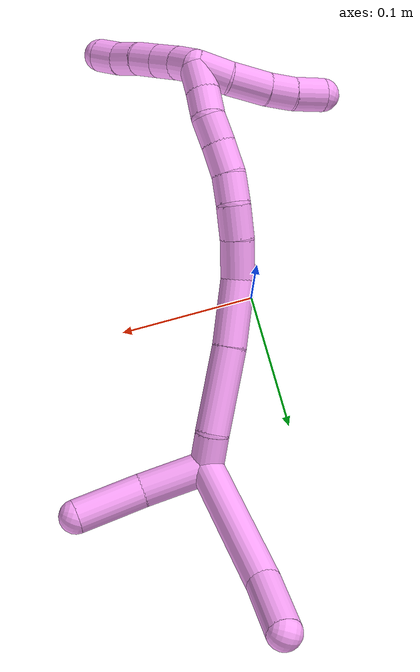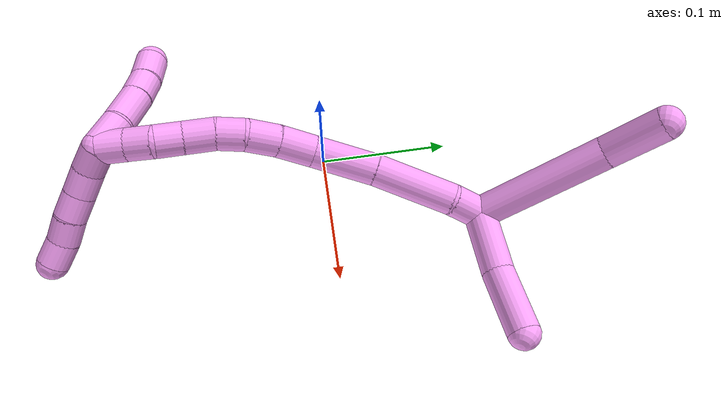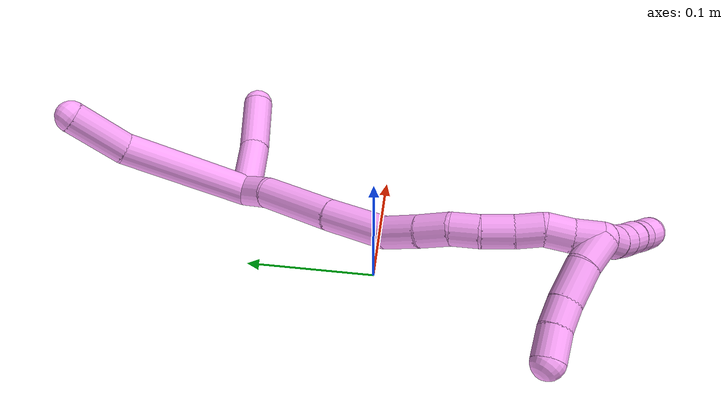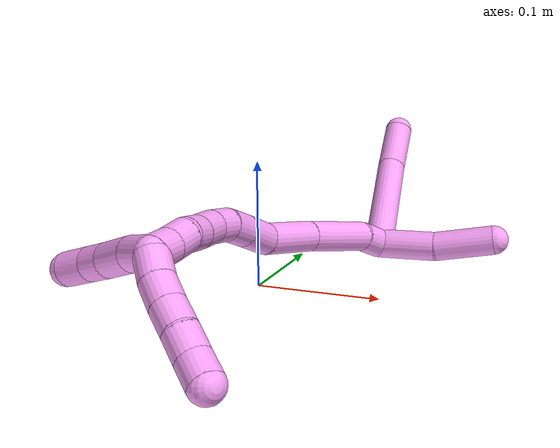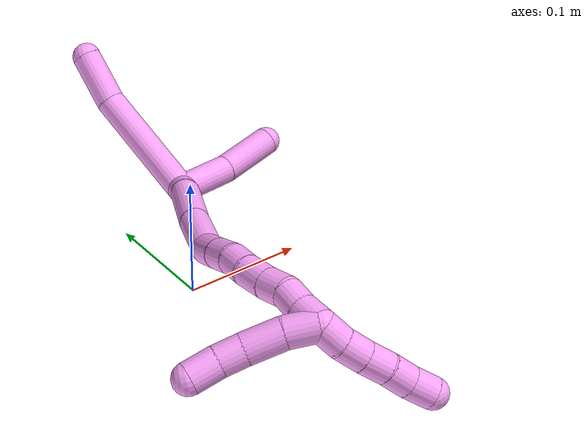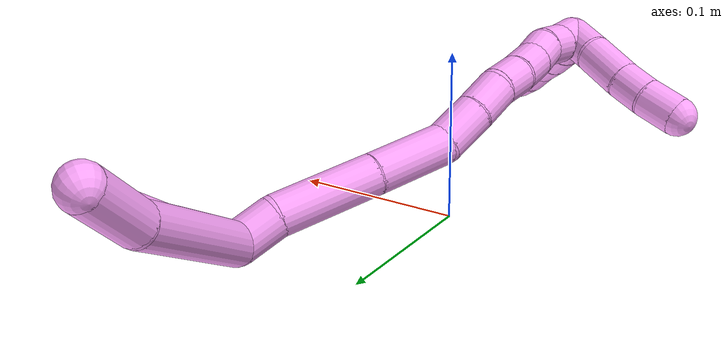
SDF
<sdf version="1.7">
 <world name="default">
  <model name="4">
   <static>0</static>
   <link name="4">
    <collision name="collision-cylinder-e_1_2_8">
     <pose>-0.028727 0.037399 -0.021839 -2.09933 -0.585667 0.967213</pose>
     <geometry><cylinder><radius>0.0125</radius><length>0.10394</length></cylinder></geometry>
     <surface>
      <friction><ode><mu>1.16</mu><mu2>1.16</mu2><slip1>0</slip1><slip2>0</slip2></ode></friction>
      <contact><ode><kp>1e+06</kp><kd>1</kd><max_vel>0</max_vel><min_depth>0.001</min_depth></ode></contact>
     </surface>
    </collision>
    <visual name="visual-cylinder-e_1_2_8">
     <pose>-0.028727 0.037399 -0.021839 -2.09933 -0.585667 0.967213</pose>
     <geometry><cylinder><radius>0.0125</radius><length>0.10394</length></cylinder></geometry>
     <material><ambient>1 0.65098 0.996078 1</ambient></material>
    </visual>
    <collision name="collision-cylinder-e_2_8_6">
     <pose>-0.073552 0.090301 -0.049236 -1.91504 -0.774027 1.04981</pose>
     <geometry><cylinder><radius>0.0125</radius><length>0.04606</length></cylinder></geometry>
     <surface>
      <friction><ode><mu>1.16</mu><mu2>1.16</mu2><slip1>0</slip1><slip2>0</slip2></ode></friction>
      <contact><ode><kp>1e+06</kp><kd>1</kd><max_vel>0</max_vel><min_depth>0.001</min_depth></ode></contact>
     </surface>
    </collision>
    <visual name="visual-cylinder-e_2_8_6">
     <pose>-0.073552 0.090301 -0.049236 -1.91504 -0.774027 1.04981</pose>
     <geometry><cylinder><radius>0.0125</radius><length>0.04606</length></cylinder></geometry>
     <material><ambient>1 0.65098 0.996078 1</ambient></material>
    </visual>
    <collision name="collision-cylinder-e_1_2_9">
     <pose>0.00619 0.013737 0.019567 -0.612099 0.253359 -0.080443</pose>
     <geometry><cylinder><radius>0.0125</radius><length>0.049392</length></cylinder></geometry>
     <surface>
      <friction><ode><mu>1.16</mu><mu2>1.16</mu2><slip1>0</slip1><slip2>0</slip2></ode></friction>
      <contact><ode><kp>1e+06</kp><kd>1</kd><max_vel>0</max_vel><min_depth>0.001</min_depth></ode></contact>
     </surface>
    </collision>
    <visual name="visual-cylinder-e_1_2_9">
     <pose>0.00619 0.013737 0.019567 -0.612099 0.253359 -0.080443</pose>
     <geometry><cylinder><radius>0.0125</radius><length>0.049392</length></cylinder></geometry>
     <material><ambient>1 0.65098 0.996078 1</ambient></material>
    </visual>
    <collision name="collision-cylinder-e_2_9_5">
     <pose>0.014593 0.04272 0.059208 -0.649573 0.087549 -0.029495</pose>
     <geometry><cylinder><radius>0.0125</radius><length>0.050608</length></cylinder></geometry>
     <surface>
      <friction><ode><mu>1.16</mu><mu2>1.16</mu2><slip1>0</slip1><slip2>0</slip2></ode></friction>
      <contact><ode><kp>1e+06</kp><kd>1</kd><max_vel>0</max_vel><min_depth>0.001</min_depth></ode></contact>
     </surface>
    </collision>
    <visual name="visual-cylinder-e_2_9_5">
     <pose>0.014593 0.04272 0.059208 -0.649573 0.087549 -0.029495</pose>
     <geometry><cylinder><radius>0.0125</radius><length>0.050608</length></cylinder></geometry>
     <material><ambient>1 0.65098 0.996078 1</ambient></material>
    </visual>
    <collision name="collision-cylinder-e_1_2_10">
     <pose>-0.006006 -0.011143 0.002384 1.36001 -0.485066 -0.394922</pose>
     <geometry><cylinder><radius>0.0125</radius><length>0.025761</length></cylinder></geometry>
     <surface>
      <friction><ode><mu>1.16</mu><mu2>1.16</mu2><slip1>0</slip1><slip2>0</slip2></ode></friction>
      <contact><ode><kp>1e+06</kp><kd>1</kd><max_vel>0</max_vel><min_depth>0.001</min_depth></ode></contact>
     </surface>
    </collision>
    <visual name="visual-cylinder-e_1_2_10">
     <pose>-0.006006 -0.011143 0.002384 1.36001 -0.485066 -0.394922</pose>
     <geometry><cylinder><radius>0.0125</radius><length>0.025761</length></cylinder></geometry>
     <material><ambient>1 0.65098 0.996078 1</ambient></material>
    </visual>
    <collision name="collision-cylinder-e_2_10_11">
     <pose>-0.019952 -0.052572 0.008355 1.45292 -0.254715 -0.226587</pose>
     <geometry><cylinder><radius>0.0125</radius><length>0.063029</length></cylinder></geometry>
     <surface>
      <friction><ode><mu>1.16</mu><mu2>1.16</mu2><slip1>0</slip1><slip2>0</slip2></ode></friction>
      <contact><ode><kp>1e+06</kp><kd>1</kd><max_vel>0</max_vel><min_depth>0.001</min_depth></ode></contact>
     </surface>
    </collision>
    <visual name="visual-cylinder-e_2_10_11">
     <pose>-0.019952 -0.052572 0.008355 1.45292 -0.254715 -0.226587</pose>
     <geometry><cylinder><radius>0.0125</radius><length>0.063029</length></cylinder></geometry>
     <material><ambient>1 0.65098 0.996078 1</ambient></material>
    </visual>
    <collision name="collision-cylinder-e_3_11_12">
     <pose>-0.032947 -0.10688 0.016289 1.39176 -0.204139 -0.170689</pose>
     <geometry><cylinder><radius>0.0125</radius><length>0.04986</length></cylinder></geometry>
     <surface>
      <friction><ode><mu>1.16</mu><mu2>1.16</mu2><slip1>0</slip1><slip2>0</slip2></ode></friction>
      <contact><ode><kp>1e+06</kp><kd>1</kd><max_vel>0</max_vel><min_depth>0.001</min_depth></ode></contact>
     </surface>
    </collision>
    <visual name="visual-cylinder-e_3_11_12">
     <pose>-0.032947 -0.10688 0.016289 1.39176 -0.204139 -0.170689</pose>
     <geometry><cylinder><radius>0.0125</radius><length>0.04986</length></cylinder></geometry>
     <material><ambient>1 0.65098 0.996078 1</ambient></material>
    </visual>
    <collision name="collision-cylinder-e_4_12_13">
     <pose>-0.044284 -0.143009 0.025949 1.15725 -0.443653 -0.292542</pose>
     <geometry><cylinder><radius>0.0125</radius><length>0.029275</length></cylinder></geometry>
     <surface>
      <friction><ode><mu>1.16</mu><mu2>1.16</mu2><slip1>0</slip1><slip2>0</slip2></ode></friction>
      <contact><ode><kp>1e+06</kp><kd>1</kd><max_vel>0</max_vel><min_depth>0.001</min_depth></ode></contact>
     </surface>
    </collision>
    <visual name="visual-cylinder-e_4_12_13">
     <pose>-0.044284 -0.143009 0.025949 1.15725 -0.443653 -0.292542</pose>
     <geometry><cylinder><radius>0.0125</radius><length>0.029275</length></cylinder></geometry>
     <material><ambient>1 0.65098 0.996078 1</ambient></material>
    </visual>
    <collision name="collision-cylinder-e_5_13_14">
     <pose>-0.055168 -0.165316 0.036779 1.07502 -0.377611 -0.226811</pose>
     <geometry><cylinder><radius>0.0125</radius><length>0.024954</length></cylinder></geometry>
     <surface>
      <friction><ode><mu>1.16</mu><mu2>1.16</mu2><slip1>0</slip1><slip2>0</slip2></ode></friction>
      <contact><ode><kp>1e+06</kp><kd>1</kd><max_vel>0</max_vel><min_depth>0.001</min_depth></ode></contact>
     </surface>
    </collision>
    <visual name="visual-cylinder-e_5_13_14">
     <pose>-0.055168 -0.165316 0.036779 1.07502 -0.377611 -0.226811</pose>
     <geometry><cylinder><radius>0.0125</radius><length>0.024954</length></cylinder></geometry>
     <material><ambient>1 0.65098 0.996078 1</ambient></material>
    </visual>
    <collision name="collision-cylinder-e_6_14_15">
     <pose>-0.061057 -0.185048 0.046868 1.12357 -0.12134 -0.076433</pose>
     <geometry><cylinder><radius>0.0125</radius><length>0.021296</length></cylinder></geometry>
     <surface>
      <friction><ode><mu>1.16</mu><mu2>1.16</mu2><slip1>0</slip1><slip2>0</slip2></ode></friction>
      <contact><ode><kp>1e+06</kp><kd>1</kd><max_vel>0</max_vel><min_depth>0.001</min_depth></ode></contact>
     </surface>
    </collision>
    <visual name="visual-cylinder-e_6_14_15">
     <pose>-0.061057 -0.185048 0.046868 1.12357 -0.12134 -0.076433</pose>
     <geometry><cylinder><radius>0.0125</radius><length>0.021296</length></cylinder></geometry>
     <material><ambient>1 0.65098 0.996078 1</ambient></material>
    </visual>
    <collision name="collision-cylinder-e_7_15_16">
     <pose>-0.06257 -0.204538 0.058074 0.983098 -0.01876 -0.010044</pose>
     <geometry><cylinder><radius>0.0125</radius><length>0.023941</length></cylinder></geometry>
     <surface>
      <friction><ode><mu>1.16</mu><mu2>1.16</mu2><slip1>0</slip1><slip2>0</slip2></ode></friction>
      <contact><ode><kp>1e+06</kp><kd>1</kd><max_vel>0</max_vel><min_depth>0.001</min_depth></ode></contact>
     </surface>
    </collision>
    <visual name="visual-cylinder-e_7_15_16">
     <pose>-0.06257 -0.204538 0.058074 0.983098 -0.01876 -0.010044</pose>
     <geometry><cylinder><radius>0.0125</radius><length>0.023941</length></cylinder></geometry>
     <material><ambient>1 0.65098 0.996078 1</ambient></material>
    </visual>
    <collision name="collision-cylinder-e_8_16_17">
     <pose>-0.063733 -0.222684 0.071005 0.915246 -0.090589 -0.044638</pose>
     <geometry><cylinder><radius>0.0125</radius><length>0.020737</length></cylinder></geometry>
     <surface>
      <friction><ode><mu>1.16</mu><mu2>1.16</mu2><slip1>0</slip1><slip2>0</slip2></ode></friction>
      <contact><ode><kp>1e+06</kp><kd>1</kd><max_vel>0</max_vel><min_depth>0.001</min_depth></ode></contact>
     </surface>
    </collision>
    <visual name="visual-cylinder-e_8_16_17">
     <pose>-0.063733 -0.222684 0.071005 0.915246 -0.090589 -0.044638</pose>
     <geometry><cylinder><radius>0.0125</radius><length>0.020737</length></cylinder></geometry>
     <material><ambient>1 0.65098 0.996078 1</ambient></material>
    </visual>
    <collision name="collision-cylinder-e_9_17_18">
     <pose>-0.063373 -0.240107 0.081333 1.15911 0.128008 0.08385</pose>
     <geometry><cylinder><radius>0.0125</radius><length>0.020325</length></cylinder></geometry>
     <surface>
      <friction><ode><mu>1.16</mu><mu2>1.16</mu2><slip1>0</slip1><slip2>0</slip2></ode></friction>
      <contact><ode><kp>1e+06</kp><kd>1</kd><max_vel>0</max_vel><min_depth>0.001</min_depth></ode></contact>
     </surface>
    </collision>
    <visual name="visual-cylinder-e_9_17_18">
     <pose>-0.063373 -0.240107 0.081333 1.15911 0.128008 0.08385</pose>
     <geometry><cylinder><radius>0.0125</radius><length>0.020325</length></cylinder></geometry>
     <material><ambient>1 0.65098 0.996078 1</ambient></material>
    </visual>
    <collision name="collision-cylinder-e_10_18_1">
     <pose>-0.061639 -0.258472 0.090353 1.07072 0.042008 0.024919</pose>
     <geometry><cylinder><radius>0.0125</radius><length>0.02082</length></cylinder></geometry>
     <surface>
      <friction><ode><mu>1.16</mu><mu2>1.16</mu2><slip1>0</slip1><slip2>0</slip2></ode></friction>
      <contact><ode><kp>1e+06</kp><kd>1</kd><max_vel>0</max_vel><min_depth>0.001</min_depth></ode></contact>
     </surface>
    </collision>
    <visual name="visual-cylinder-e_10_18_1">
     <pose>-0.061639 -0.258472 0.090353 1.07072 0.042008 0.024919</pose>
     <geometry><cylinder><radius>0.0125</radius><length>0.02082</length></cylinder></geometry>
     <material><ambient>1 0.65098 0.996078 1</ambient></material>
    </visual>
    <collision name="collision-cylinder-e_1_1_19">
     <pose>-0.053265 -0.270676 0.100588 0.530307 0.916865 0.266429</pose>
     <geometry><cylinder><radius>0.0125</radius><length>0.02</length></cylinder></geometry>
     <surface>
      <friction><ode><mu>1.16</mu><mu2>1.16</mu2><slip1>0</slip1><slip2>0</slip2></ode></friction>
      <contact><ode><kp>1e+06</kp><kd>1</kd><max_vel>0</max_vel><min_depth>0.001</min_depth></ode></contact>
     </surface>
    </collision>
    <visual name="visual-cylinder-e_1_1_19">
     <pose>-0.053265 -0.270676 0.100588 0.530307 0.916865 0.266429</pose>
     <geometry><cylinder><radius>0.0125</radius><length>0.02</length></cylinder></geometry>
     <material><ambient>1 0.65098 0.996078 1</ambient></material>
    </visual>
    <collision name="collision-cylinder-e_2_19_20">
     <pose>-0.037881 -0.275709 0.112217 0.297524 0.840012 0.133658</pose>
     <geometry><cylinder><radius>0.0125</radius><length>0.02</length></cylinder></geometry>
     <surface>
      <friction><ode><mu>1.16</mu><mu2>1.16</mu2><slip1>0</slip1><slip2>0</slip2></ode></friction>
      <contact><ode><kp>1e+06</kp><kd>1</kd><max_vel>0</max_vel><min_depth>0.001</min_depth></ode></contact>
     </surface>
    </collision>
    <visual name="visual-cylinder-e_2_19_20">
     <pose>-0.037881 -0.275709 0.112217 0.297524 0.840012 0.133658</pose>
     <geometry><cylinder><radius>0.0125</radius><length>0.02</length></cylinder></geometry>
     <material><ambient>1 0.65098 0.996078 1</ambient></material>
    </visual>
    <collision name="collision-cylinder-e_3_20_21">
     <pose>-0.023373 -0.279366 0.125472 0.242369 0.784066 0.100612</pose>
     <geometry><cylinder><radius>0.0125</radius><length>0.02</length></cylinder></geometry>
     <surface>
      <friction><ode><mu>1.16</mu><mu2>1.16</mu2><slip1>0</slip1><slip2>0</slip2></ode></friction>
      <contact><ode><kp>1e+06</kp><kd>1</kd><max_vel>0</max_vel><min_depth>0.001</min_depth></ode></contact>
     </surface>
    </collision>
    <visual name="visual-cylinder-e_3_20_21">
     <pose>-0.023373 -0.279366 0.125472 0.242369 0.784066 0.100612</pose>
     <geometry><cylinder><radius>0.0125</radius><length>0.02</length></cylinder></geometry>
     <material><ambient>1 0.65098 0.996078 1</ambient></material>
    </visual>
    <collision name="collision-cylinder-e_4_21_22">
     <pose>-0.008481 -0.28239 0.138422 0.214789 0.899554 0.104002</pose>
     <geometry><cylinder><radius>0.0125</radius><length>0.02</length></cylinder></geometry>
     <surface>
      <friction><ode><mu>1.16</mu><mu2>1.16</mu2><slip1>0</slip1><slip2>0</slip2></ode></friction>
      <contact><ode><kp>1e+06</kp><kd>1</kd><max_vel>0</max_vel><min_depth>0.001</min_depth></ode></contact>
     </surface>
    </collision>
    <visual name="visual-cylinder-e_4_21_22">
     <pose>-0.008481 -0.28239 0.138422 0.214789 0.899554 0.104002</pose>
     <geometry><cylinder><radius>0.0125</radius><length>0.02</length></cylinder></geometry>
     <material><ambient>1 0.65098 0.996078 1</ambient></material>
    </visual>
    <collision name="collision-cylinder-e_5_22_4">
     <pose>0.006025 -0.285676 0.151682 0.266364 0.730849 0.10243</pose>
     <geometry><cylinder><radius>0.0125</radius><length>0.02</length></cylinder></geometry>
     <surface>
      <friction><ode><mu>1.16</mu><mu2>1.16</mu2><slip1>0</slip1><slip2>0</slip2></ode></friction>
      <contact><ode><kp>1e+06</kp><kd>1</kd><max_vel>0</max_vel><min_depth>0.001</min_depth></ode></contact>
     </surface>
    </collision>
    <visual name="visual-cylinder-e_5_22_4">
     <pose>0.006025 -0.285676 0.151682 0.266364 0.730849 0.10243</pose>
     <geometry><cylinder><radius>0.0125</radius><length>0.02</length></cylinder></geometry>
     <material><ambient>1 0.65098 0.996078 1</ambient></material>
    </visual>
    <collision name="collision-cylinder-e_1_1_23">
     <pose>-0.061709 -0.267387 0.082591 -3.12498 -0.039751 2.34974</pose>
     <geometry><cylinder><radius>0.0125</radius><length>0.025523</length></cylinder></geometry>
     <surface>
      <friction><ode><mu>1.16</mu><mu2>1.16</mu2><slip1>0</slip1><slip2>0</slip2></ode></friction>
      <contact><ode><kp>1e+06</kp><kd>1</kd><max_vel>0</max_vel><min_depth>0.001</min_depth></ode></contact>
     </surface>
    </collision>
    <visual name="visual-cylinder-e_1_1_23">
     <pose>-0.061709 -0.267387 0.082591 -3.12498 -0.039751 2.34974</pose>
     <geometry><cylinder><radius>0.0125</radius><length>0.025523</length></cylinder></geometry>
     <material><ambient>1 0.65098 0.996078 1</ambient></material>
    </visual>
    <collision name="collision-cylinder-e_2_23_24">
     <pose>-0.061098 -0.268997 0.054775 3.0213 0.073537 1.09673</pose>
     <geometry><cylinder><radius>0.0125</radius><length>0.030434</length></cylinder></geometry>
     <surface>
      <friction><ode><mu>1.16</mu><mu2>1.16</mu2><slip1>0</slip1><slip2>0</slip2></ode></friction>
      <contact><ode><kp>1e+06</kp><kd>1</kd><max_vel>0</max_vel><min_depth>0.001</min_depth></ode></contact>
     </surface>
    </collision>
    <visual name="visual-cylinder-e_2_23_24">
     <pose>-0.061098 -0.268997 0.054775 3.0213 0.073537 1.09673</pose>
     <geometry><cylinder><radius>0.0125</radius><length>0.030434</length></cylinder></geometry>
     <material><ambient>1 0.65098 0.996078 1</ambient></material>
    </visual>
    <collision name="collision-cylinder-e_3_24_25">
     <pose>-0.059524 -0.272972 0.029767 2.92821 0.044752 0.412</pose>
     <geometry><cylinder><radius>0.0125</radius><length>0.020363</length></cylinder></geometry>
     <surface>
      <friction><ode><mu>1.16</mu><mu2>1.16</mu2><slip1>0</slip1><slip2>0</slip2></ode></friction>
      <contact><ode><kp>1e+06</kp><kd>1</kd><max_vel>0</max_vel><min_depth>0.001</min_depth></ode></contact>
     </surface>
    </collision>
    <visual name="visual-cylinder-e_3_24_25">
     <pose>-0.059524 -0.272972 0.029767 2.92821 0.044752 0.412</pose>
     <geometry><cylinder><radius>0.0125</radius><length>0.020363</length></cylinder></geometry>
     <material><ambient>1 0.65098 0.996078 1</ambient></material>
    </visual>
    <collision name="collision-cylinder-e_4_25_3">
     <pose>-0.058661 -0.279218 0.008724 2.78848 0.034455 0.192539</pose>
     <geometry><cylinder><radius>0.0125</radius><length>0.023679</length></cylinder></geometry>
     <surface>
      <friction><ode><mu>1.16</mu><mu2>1.16</mu2><slip1>0</slip1><slip2>0</slip2></ode></friction>
      <contact><ode><kp>1e+06</kp><kd>1</kd><max_vel>0</max_vel><min_depth>0.001</min_depth></ode></contact>
     </surface>
    </collision>
    <visual name="visual-cylinder-e_4_25_3">
     <pose>-0.058661 -0.279218 0.008724 2.78848 0.034455 0.192539</pose>
     <geometry><cylinder><radius>0.0125</radius><length>0.023679</length></cylinder></geometry>
     <material><ambient>1 0.65098 0.996078 1</ambient></material>
    </visual>
    <collision name="collision-sphere-3">
     <pose>-0.058253 -0.28331 -0.002378 0 -0 0</pose>
     <geometry><sphere><radius>0.0125</radius></sphere></geometry>
     <surface>
      <friction><ode><mu>1.16</mu><mu2>1.16</mu2><slip1>0</slip1><slip2>0</slip2></ode></friction>
      <contact><ode><kp>1e+06</kp><kd>1</kd><max_vel>0</max_vel><min_depth>0.001</min_depth></ode></contact>
     </surface>
    </collision>
    <visual name="visual-sphere-3">
     <pose>-0.058253 -0.28331 -0.002378 0 -0 0</pose>
     <geometry><sphere><radius>0.0125</radius></sphere></geometry>
     <material><ambient>1 0.65098 0.996078 1</ambient></material>
    </visual>
    <collision name="collision-sphere-25">
     <pose>-0.059069 -0.275126 0.019827 0 -0 0</pose>
     <geometry><sphere><radius>0.0125</radius></sphere></geometry>
     <surface>
      <friction><ode><mu>1.16</mu><mu2>1.16</mu2><slip1>0</slip1><slip2>0</slip2></ode></friction>
      <contact><ode><kp>1e+06</kp><kd>1</kd><max_vel>0</max_vel><min_depth>0.001</min_depth></ode></contact>
     </surface>
    </collision>
    <visual name="visual-sphere-25">
     <pose>-0.059069 -0.275126 0.019827 0 -0 0</pose>
     <geometry><sphere><radius>0.0125</radius></sphere></geometry>
     <material><ambient>1 0.65098 0.996078 1</ambient></material>
    </visual>
    <collision name="collision-sphere-24">
     <pose>-0.05998 -0.270818 0.039708 0 -0 0</pose>
     <geometry><sphere><radius>0.0125</radius></sphere></geometry>
     <surface>
      <friction><ode><mu>1.16</mu><mu2>1.16</mu2><slip1>0</slip1><slip2>0</slip2></ode></friction>
      <contact><ode><kp>1e+06</kp><kd>1</kd><max_vel>0</max_vel><min_depth>0.001</min_depth></ode></contact>
     </surface>
    </collision>
    <visual name="visual-sphere-24">
     <pose>-0.05998 -0.270818 0.039708 0 -0 0</pose>
     <geometry><sphere><radius>0.0125</radius></sphere></geometry>
     <material><ambient>1 0.65098 0.996078 1</ambient></material>
    </visual>
    <collision name="collision-sphere-23">
     <pose>-0.062216 -0.267175 0.069841 0 -0 0</pose>
     <geometry><sphere><radius>0.0125</radius></sphere></geometry>
     <surface>
      <friction><ode><mu>1.16</mu><mu2>1.16</mu2><slip1>0</slip1><slip2>0</slip2></ode></friction>
      <contact><ode><kp>1e+06</kp><kd>1</kd><max_vel>0</max_vel><min_depth>0.001</min_depth></ode></contact>
     </surface>
    </collision>
    <visual name="visual-sphere-23">
     <pose>-0.062216 -0.267175 0.069841 0 -0 0</pose>
     <geometry><sphere><radius>0.0125</radius></sphere></geometry>
     <material><ambient>1 0.65098 0.996078 1</ambient></material>
    </visual>
    <collision name="collision-sphere-4">
     <pose>0.0127 -0.287636 0.158866 0 -0 0</pose>
     <geometry><sphere><radius>0.0125</radius></sphere></geometry>
     <surface>
      <friction><ode><mu>1.16</mu><mu2>1.16</mu2><slip1>0</slip1><slip2>0</slip2></ode></friction>
      <contact><ode><kp>1e+06</kp><kd>1</kd><max_vel>0</max_vel><min_depth>0.001</min_depth></ode></contact>
     </surface>
    </collision>
    <visual name="visual-sphere-4">
     <pose>0.0127 -0.287636 0.158866 0 -0 0</pose>
     <geometry><sphere><radius>0.0125</radius></sphere></geometry>
     <material><ambient>1 0.65098 0.996078 1</ambient></material>
    </visual>
    <collision name="collision-sphere-22">
     <pose>-0.00065 -0.283716 0.144499 0 -0 0</pose>
     <geometry><sphere><radius>0.0125</radius></sphere></geometry>
     <surface>
      <friction><ode><mu>1.16</mu><mu2>1.16</mu2><slip1>0</slip1><slip2>0</slip2></ode></friction>
      <contact><ode><kp>1e+06</kp><kd>1</kd><max_vel>0</max_vel><min_depth>0.001</min_depth></ode></contact>
     </surface>
    </collision>
    <visual name="visual-sphere-22">
     <pose>-0.00065 -0.283716 0.144499 0 -0 0</pose>
     <geometry><sphere><radius>0.0125</radius></sphere></geometry>
     <material><ambient>1 0.65098 0.996078 1</ambient></material>
    </visual>
    <collision name="collision-sphere-21">
     <pose>-0.016311 -0.281065 0.132345 0 -0 0</pose>
     <geometry><sphere><radius>0.0125</radius></sphere></geometry>
     <surface>
      <friction><ode><mu>1.16</mu><mu2>1.16</mu2><slip1>0</slip1><slip2>0</slip2></ode></friction>
      <contact><ode><kp>1e+06</kp><kd>1</kd><max_vel>0</max_vel><min_depth>0.001</min_depth></ode></contact>
     </surface>
    </collision>
    <visual name="visual-sphere-21">
     <pose>-0.016311 -0.281065 0.132345 0 -0 0</pose>
     <geometry><sphere><radius>0.0125</radius></sphere></geometry>
     <material><ambient>1 0.65098 0.996078 1</ambient></material>
    </visual>
    <collision name="collision-sphere-20">
     <pose>-0.030435 -0.277666 0.118598 0 -0 0</pose>
     <geometry><sphere><radius>0.0125</radius></sphere></geometry>
     <surface>
      <friction><ode><mu>1.16</mu><mu2>1.16</mu2><slip1>0</slip1><slip2>0</slip2></ode></friction>
      <contact><ode><kp>1e+06</kp><kd>1</kd><max_vel>0</max_vel><min_depth>0.001</min_depth></ode></contact>
     </surface>
    </collision>
    <visual name="visual-sphere-20">
     <pose>-0.030435 -0.277666 0.118598 0 -0 0</pose>
     <geometry><sphere><radius>0.0125</radius></sphere></geometry>
     <material><ambient>1 0.65098 0.996078 1</ambient></material>
    </visual>
    <collision name="collision-sphere-10">
     <pose>-0.012012 -0.022285 0.004768 0 -0 0</pose>
     <geometry><sphere><radius>0.0125</radius></sphere></geometry>
     <surface>
      <friction><ode><mu>1.16</mu><mu2>1.16</mu2><slip1>0</slip1><slip2>0</slip2></ode></friction>
      <contact><ode><kp>1e+06</kp><kd>1</kd><max_vel>0</max_vel><min_depth>0.001</min_depth></ode></contact>
     </surface>
    </collision>
    <visual name="visual-sphere-10">
     <pose>-0.012012 -0.022285 0.004768 0 -0 0</pose>
     <geometry><sphere><radius>0.0125</radius></sphere></geometry>
     <material><ambient>1 0.65098 0.996078 1</ambient></material>
    </visual>
    <collision name="collision-sphere-5">
     <pose>0.016805 0.057967 0.079281 0 -0 0</pose>
     <geometry><sphere><radius>0.0125</radius></sphere></geometry>
     <surface>
      <friction><ode><mu>1.16</mu><mu2>1.16</mu2><slip1>0</slip1><slip2>0</slip2></ode></friction>
      <contact><ode><kp>1e+06</kp><kd>1</kd><max_vel>0</max_vel><min_depth>0.001</min_depth></ode></contact>
     </surface>
    </collision>
    <visual name="visual-sphere-5">
     <pose>0.016805 0.057967 0.079281 0 -0 0</pose>
     <geometry><sphere><radius>0.0125</radius></sphere></geometry>
     <material><ambient>1 0.65098 0.996078 1</ambient></material>
    </visual>
    <collision name="collision-sphere-6">
     <pose>-0.08965 0.105804 -0.054794 0 -0 0</pose>
     <geometry><sphere><radius>0.0125</radius></sphere></geometry>
     <surface>
      <friction><ode><mu>1.16</mu><mu2>1.16</mu2><slip1>0</slip1><slip2>0</slip2></ode></friction>
      <contact><ode><kp>1e+06</kp><kd>1</kd><max_vel>0</max_vel><min_depth>0.001</min_depth></ode></contact>
     </surface>
    </collision>
    <visual name="visual-sphere-6">
     <pose>-0.08965 0.105804 -0.054794 0 -0 0</pose>
     <geometry><sphere><radius>0.0125</radius></sphere></geometry>
     <material><ambient>1 0.65098 0.996078 1</ambient></material>
    </visual>
    <collision name="collision-sphere-9">
     <pose>0.01238 0.027474 0.039134 0 -0 0</pose>
     <geometry><sphere><radius>0.0125</radius></sphere></geometry>
     <surface>
      <friction><ode><mu>1.16</mu><mu2>1.16</mu2><slip1>0</slip1><slip2>0</slip2></ode></friction>
      <contact><ode><kp>1e+06</kp><kd>1</kd><max_vel>0</max_vel><min_depth>0.001</min_depth></ode></contact>
     </surface>
    </collision>
    <visual name="visual-sphere-9">
     <pose>0.01238 0.027474 0.039134 0 -0 0</pose>
     <geometry><sphere><radius>0.0125</radius></sphere></geometry>
     <material><ambient>1 0.65098 0.996078 1</ambient></material>
    </visual>
    <collision name="collision-sphere-2">
     <geometry><sphere><radius>0.0125</radius></sphere></geometry>
     <surface>
      <friction><ode><mu>1.16</mu><mu2>1.16</mu2><slip1>0</slip1><slip2>0</slip2></ode></friction>
      <contact><ode><kp>1e+06</kp><kd>1</kd><max_vel>0</max_vel><min_depth>0.001</min_depth></ode></contact>
     </surface>
    </collision>
    <visual name="visual-sphere-2">
     <geometry><sphere><radius>0.0125</radius></sphere></geometry>
     <material><ambient>1 0.65098 0.996078 1</ambient></material>
    </visual>
    <collision name="collision-sphere-19">
     <pose>-0.045328 -0.273753 0.105836 0 -0 0</pose>
     <geometry><sphere><radius>0.0125</radius></sphere></geometry>
     <surface>
      <friction><ode><mu>1.16</mu><mu2>1.16</mu2><slip1>0</slip1><slip2>0</slip2></ode></friction>
      <contact><ode><kp>1e+06</kp><kd>1</kd><max_vel>0</max_vel><min_depth>0.001</min_depth></ode></contact>
     </surface>
    </collision>
    <visual name="visual-sphere-19">
     <pose>-0.045328 -0.273753 0.105836 0 -0 0</pose>
     <geometry><sphere><radius>0.0125</radius></sphere></geometry>
     <material><ambient>1 0.65098 0.996078 1</ambient></material>
    </visual>
    <collision name="collision-sphere-8">
     <pose>-0.057454 0.074799 -0.043679 0 -0 0</pose>
     <geometry><sphere><radius>0.0125</radius></sphere></geometry>
     <surface>
      <friction><ode><mu>1.16</mu><mu2>1.16</mu2><slip1>0</slip1><slip2>0</slip2></ode></friction>
      <contact><ode><kp>1e+06</kp><kd>1</kd><max_vel>0</max_vel><min_depth>0.001</min_depth></ode></contact>
     </surface>
    </collision>
    <visual name="visual-sphere-8">
     <pose>-0.057454 0.074799 -0.043679 0 -0 0</pose>
     <geometry><sphere><radius>0.0125</radius></sphere></geometry>
     <material><ambient>1 0.65098 0.996078 1</ambient></material>
    </visual>
    <collision name="collision-sphere-11">
     <pose>-0.027893 -0.082858 0.011941 0 -0 0</pose>
     <geometry><sphere><radius>0.0125</radius></sphere></geometry>
     <surface>
      <friction><ode><mu>1.16</mu><mu2>1.16</mu2><slip1>0</slip1><slip2>0</slip2></ode></friction>
      <contact><ode><kp>1e+06</kp><kd>1</kd><max_vel>0</max_vel><min_depth>0.001</min_depth></ode></contact>
     </surface>
    </collision>
    <visual name="visual-sphere-11">
     <pose>-0.027893 -0.082858 0.011941 0 -0 0</pose>
     <geometry><sphere><radius>0.0125</radius></sphere></geometry>
     <material><ambient>1 0.65098 0.996078 1</ambient></material>
    </visual>
    <collision name="collision-sphere-12">
     <pose>-0.038001 -0.130902 0.020636 0 -0 0</pose>
     <geometry><sphere><radius>0.0125</radius></sphere></geometry>
     <surface>
      <friction><ode><mu>1.16</mu><mu2>1.16</mu2><slip1>0</slip1><slip2>0</slip2></ode></friction>
      <contact><ode><kp>1e+06</kp><kd>1</kd><max_vel>0</max_vel><min_depth>0.001</min_depth></ode></contact>
     </surface>
    </collision>
    <visual name="visual-sphere-12">
     <pose>-0.038001 -0.130902 0.020636 0 -0 0</pose>
     <geometry><sphere><radius>0.0125</radius></sphere></geometry>
     <material><ambient>1 0.65098 0.996078 1</ambient></material>
    </visual>
    <collision name="collision-sphere-13">
     <pose>-0.050567 -0.155115 0.031262 0 -0 0</pose>
     <geometry><sphere><radius>0.0125</radius></sphere></geometry>
     <surface>
      <friction><ode><mu>1.16</mu><mu2>1.16</mu2><slip1>0</slip1><slip2>0</slip2></ode></friction>
      <contact><ode><kp>1e+06</kp><kd>1</kd><max_vel>0</max_vel><min_depth>0.001</min_depth></ode></contact>
     </surface>
    </collision>
    <visual name="visual-sphere-13">
     <pose>-0.050567 -0.155115 0.031262 0 -0 0</pose>
     <geometry><sphere><radius>0.0125</radius></sphere></geometry>
     <material><ambient>1 0.65098 0.996078 1</ambient></material>
    </visual>
    <collision name="collision-sphere-14">
     <pose>-0.059768 -0.175518 0.042297 0 -0 0</pose>
     <geometry><sphere><radius>0.0125</radius></sphere></geometry>
     <surface>
      <friction><ode><mu>1.16</mu><mu2>1.16</mu2><slip1>0</slip1><slip2>0</slip2></ode></friction>
      <contact><ode><kp>1e+06</kp><kd>1</kd><max_vel>0</max_vel><min_depth>0.001</min_depth></ode></contact>
     </surface>
    </collision>
    <visual name="visual-sphere-14">
     <pose>-0.059768 -0.175518 0.042297 0 -0 0</pose>
     <geometry><sphere><radius>0.0125</radius></sphere></geometry>
     <material><ambient>1 0.65098 0.996078 1</ambient></material>
    </visual>
    <collision name="collision-sphere-15">
     <pose>-0.062346 -0.194578 0.051439 0 -0 0</pose>
     <geometry><sphere><radius>0.0125</radius></sphere></geometry>
     <surface>
      <friction><ode><mu>1.16</mu><mu2>1.16</mu2><slip1>0</slip1><slip2>0</slip2></ode></friction>
      <contact><ode><kp>1e+06</kp><kd>1</kd><max_vel>0</max_vel><min_depth>0.001</min_depth></ode></contact>
     </surface>
    </collision>
    <visual name="visual-sphere-15">
     <pose>-0.062346 -0.194578 0.051439 0 -0 0</pose>
     <geometry><sphere><radius>0.0125</radius></sphere></geometry>
     <material><ambient>1 0.65098 0.996078 1</ambient></material>
    </visual>
    <collision name="collision-sphere-16">
     <pose>-0.062795 -0.214499 0.06471 0 -0 0</pose>
     <geometry><sphere><radius>0.0125</radius></sphere></geometry>
     <surface>
      <friction><ode><mu>1.16</mu><mu2>1.16</mu2><slip1>0</slip1><slip2>0</slip2></ode></friction>
      <contact><ode><kp>1e+06</kp><kd>1</kd><max_vel>0</max_vel><min_depth>0.001</min_depth></ode></contact>
     </surface>
    </collision>
    <visual name="visual-sphere-16">
     <pose>-0.062795 -0.214499 0.06471 0 -0 0</pose>
     <geometry><sphere><radius>0.0125</radius></sphere></geometry>
     <material><ambient>1 0.65098 0.996078 1</ambient></material>
    </visual>
    <collision name="collision-sphere-17">
     <pose>-0.064671 -0.23087 0.077299 0 -0 0</pose>
     <geometry><sphere><radius>0.0125</radius></sphere></geometry>
     <surface>
      <friction><ode><mu>1.16</mu><mu2>1.16</mu2><slip1>0</slip1><slip2>0</slip2></ode></friction>
      <contact><ode><kp>1e+06</kp><kd>1</kd><max_vel>0</max_vel><min_depth>0.001</min_depth></ode></contact>
     </surface>
    </collision>
    <visual name="visual-sphere-17">
     <pose>-0.064671 -0.23087 0.077299 0 -0 0</pose>
     <geometry><sphere><radius>0.0125</radius></sphere></geometry>
     <material><ambient>1 0.65098 0.996078 1</ambient></material>
    </visual>
    <collision name="collision-sphere-18">
     <pose>-0.062076 -0.249345 0.085366 0 -0 0</pose>
     <geometry><sphere><radius>0.0125</radius></sphere></geometry>
     <surface>
      <friction><ode><mu>1.16</mu><mu2>1.16</mu2><slip1>0</slip1><slip2>0</slip2></ode></friction>
      <contact><ode><kp>1e+06</kp><kd>1</kd><max_vel>0</max_vel><min_depth>0.001</min_depth></ode></contact>
     </surface>
    </collision>
    <visual name="visual-sphere-18">
     <pose>-0.062076 -0.249345 0.085366 0 -0 0</pose>
     <geometry><sphere><radius>0.0125</radius></sphere></geometry>
     <material><ambient>1 0.65098 0.996078 1</ambient></material>
    </visual>
    <collision name="collision-sphere-1">
     <pose>-0.061202 -0.267599 0.095341 0 -0 0</pose>
     <geometry><sphere><radius>0.0125</radius></sphere></geometry>
     <surface>
      <friction><ode><mu>1.16</mu><mu2>1.16</mu2><slip1>0</slip1><slip2>0</slip2></ode></friction>
      <contact><ode><kp>1e+06</kp><kd>1</kd><max_vel>0</max_vel><min_depth>0.001</min_depth></ode></contact>
     </surface>
    </collision>
    <visual name="visual-sphere-1">
     <pose>-0.061202 -0.267599 0.095341 0 -0 0</pose>
     <geometry><sphere><radius>0.0125</radius></sphere></geometry>
     <material><ambient>1 0.65098 0.996078 1</ambient></material>
    </visual>
    <inertial>
     <pose>-0.034832 -0.113506 0.036071 0 -0 0</pose>
     <mass>0.75</mass>
     <inertia>
      <ixx>0.000196</ixx>
      <ixy>0</ixy>
      <ixz>0</ixz>
      <iyy>0.000111</iyy>
      <iyz>0</iyz>
      <izz>2.9e-05</izz>
     </inertia>
    </inertial>
   </link>
   <pose>0.066948 0.11434 0.012493 0.378495 1.29612 -0.150807</pose>
  </model>
 </world>
</sdf>
